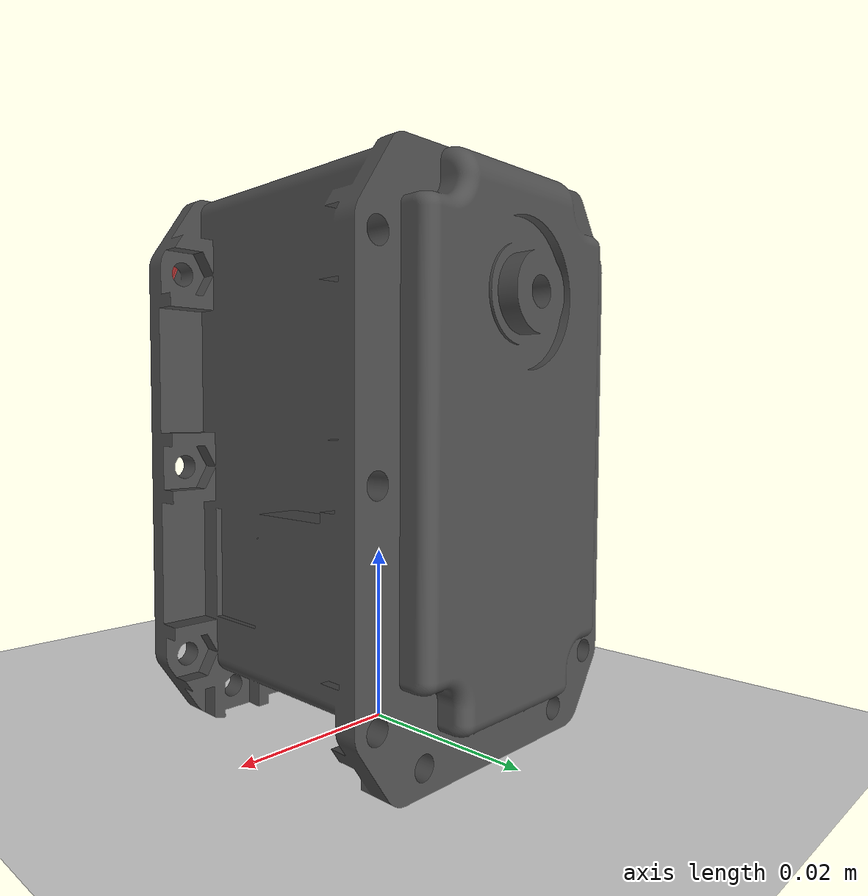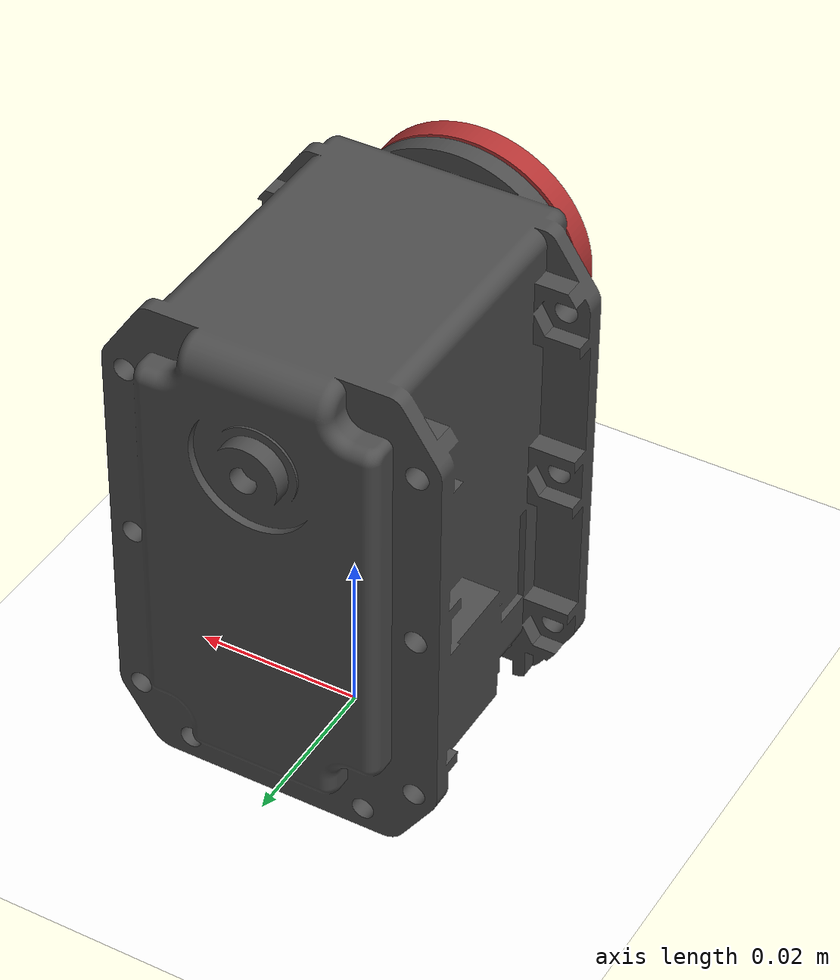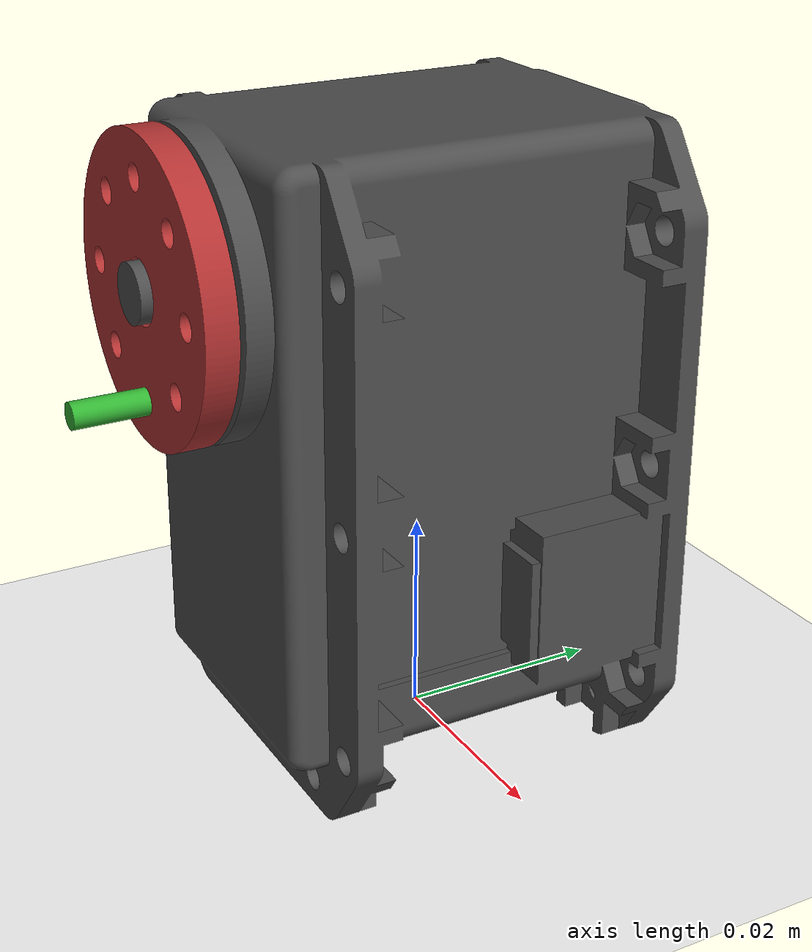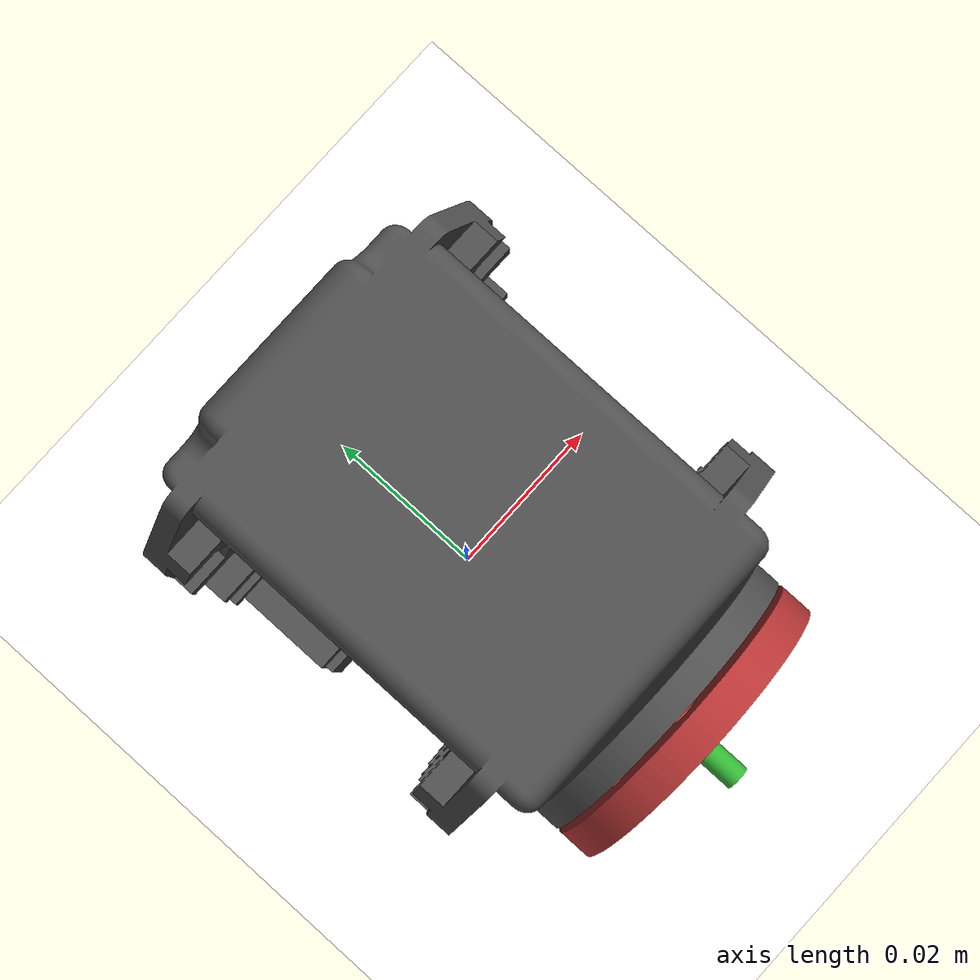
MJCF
<mujoco model="motor_assembly">
  <compiler angle="radian" meshdir="assets/meshes"/>

  <option iterations="1" ls_iterations="5" timestep="0.004" integrator="Euler">
    <flag eulerdamp="disable"/>
  </option>

  <default>
    <joint axis="0 0 1" armature="0.0005" damping="0.05"/>
  </default>

  <visual>
    <global offwidth="1280" offheight="720"/>
    <quality shadowsize="4096"/>
    <map znear="0.01"/>
  </visual>

  <asset>
    <mesh name="motor"    file="motor.stl"          scale="0.001 0.001 0.001"/>
    <mesh name="disk"     file="disk_with_hole.stl"  scale="0.001 0.001 0.001"/>
    <mesh name="cylinder" file="cylinder_pin.stl"    scale="0.001 0.001 0.001"/>

    <material name="motor_mat"    rgba="0.3 0.3 0.3 1"/>
    <material name="disk_mat"     rgba="0.7 0.2 0.2 1"/>
    <material name="cylinder_mat" rgba="0.2 0.7 0.2 1"/>
  </asset>

  <worldbody>
    <geom name="floor" type="plane" size="1 1 0.1" rgba="1 1 1 1.0"/>

    <camera name="fixed_cam" pos="-0.009 -0.206 0.066"
            xyaxes="0.999 -0.044 0.000 0.013 0.305 0.952"/>

    <body name="motor_body" pos="0 0 0.048" quat="0.7071068 0.7071068 0 0">
      <geom name="motor_geom" type="mesh" mesh="motor" material="motor_mat"
            contype="0" conaffinity="0"/>
      <inertial pos="0 0 0" mass="0.130" diaginertia="0.001 0.001 0.001"/>

      <body name="disk_body" pos="0 0 0.024" axisangle="0 0 1 -3.14159">
        <joint name="disk_joint" type="hinge" pos="0 0 0"
               limited="false" range="0 6.28" frictionloss="0.01"/>
        <geom name="disk_geom" type="mesh" mesh="disk" material="disk_mat"
              contype="0" conaffinity="0"/>
        <inertial pos="0 0 0" mass="0.004"
                  diaginertia="1.96e-05 1.96e-05 3.92e-05"/>

        <body name="cylinder_body" pos="0 0.01 0">
          <geom name="cylinder_geom" type="mesh" mesh="cylinder"
                material="cylinder_mat" contype="0" conaffinity="0"/>
          <inertial pos="0 0 0.0005" mass="0.0005"
                    diaginertia="0.00000001 0.00000001 0.00000001"/>
        </body>
      </body>
    </body>

    <light directional="true" pos="0 0 1"      dir="0 0 -1"    diffuse="0.6 0.6 0.6"/>
    <light directional="true" pos="0 -0.5 0.5" dir="0 1 -0.5"  diffuse="0.5 0.5 0.5"/>
    <light directional="true" pos="0.5 0 0.5"  dir="-1 0 -0.5" diffuse="0.3 0.3 0.3"/>
    <light directional="true" pos="-0.5 0 0.5" dir="1 0 -0.5"  diffuse="0.3 0.3 0.3"/>
    <light directional="true" pos="0 0.5 0.5"  dir="0 -1 -0.5" diffuse="0.2 0.2 0.2"/>
  </worldbody>

  <actuator>
    <!-- Position actuator: kp=10 Nm/rad, kd=0. Gains will be tuned during sysid. -->
    <position name="disk_motor" joint="disk_joint" kp="10" kv="0"
              forcerange="-6.0 6.0"/>
  </actuator>

  <sensor>
    <jointpos name="disk_angle"    joint="disk_joint"/>
    <jointvel name="disk_velocity" joint="disk_joint"/>
  </sensor>

  <keyframe>
    <key name="home" qpos="0" ctrl="0"/>
  </keyframe>

</mujoco>
